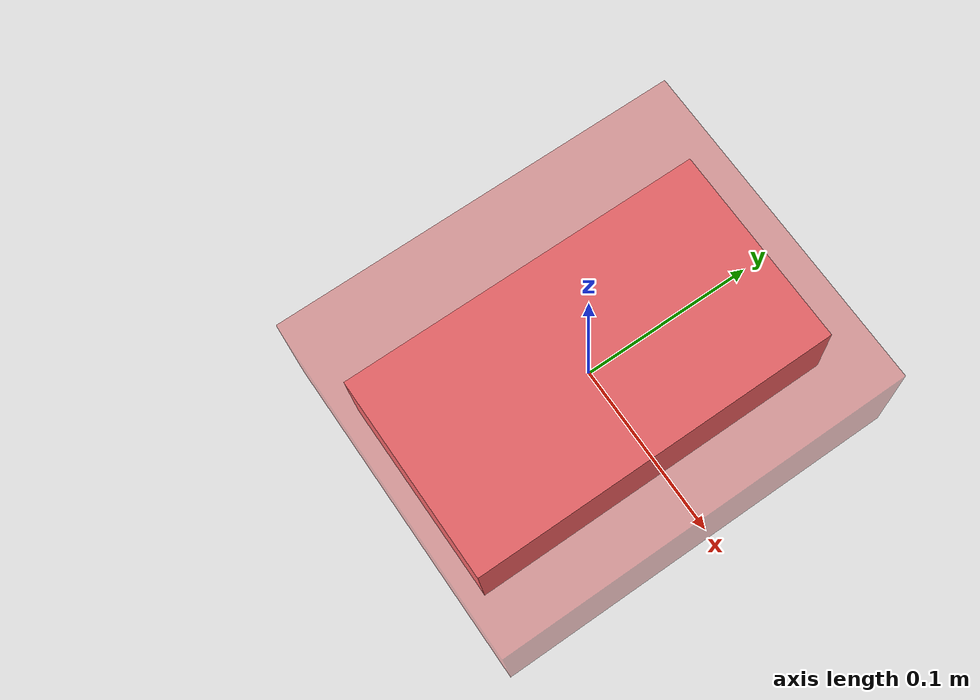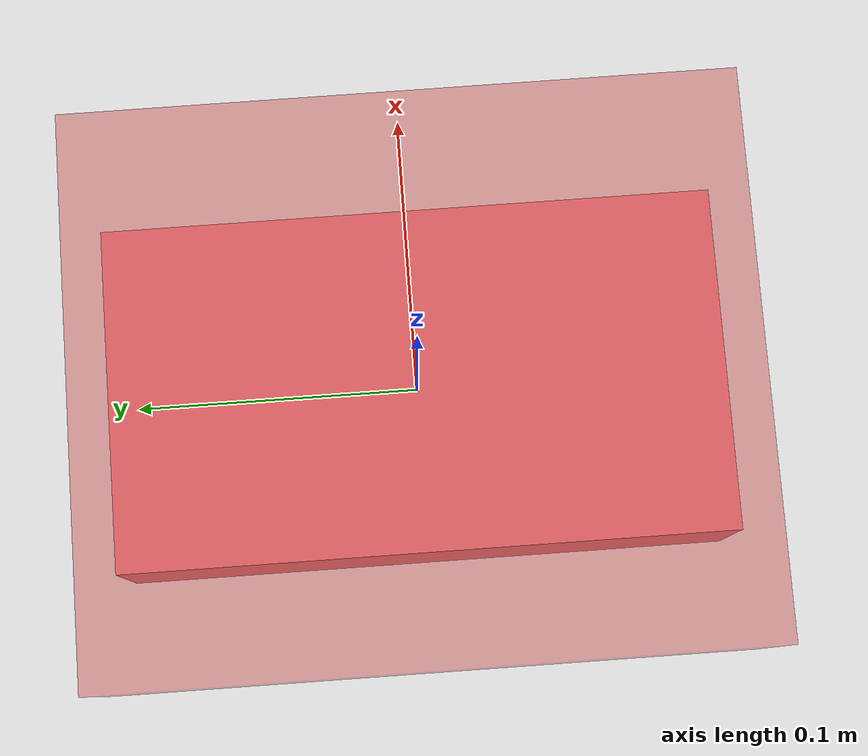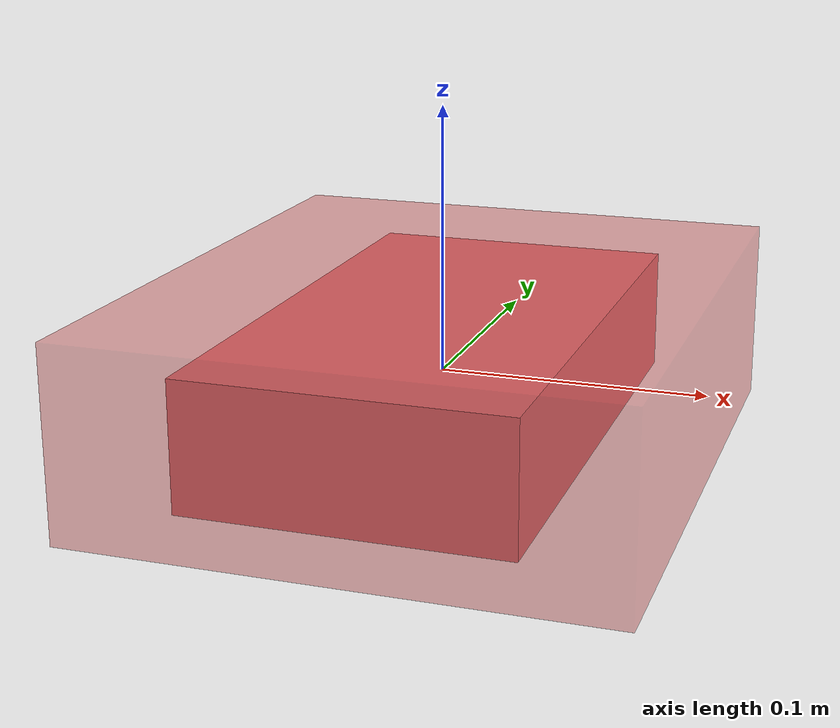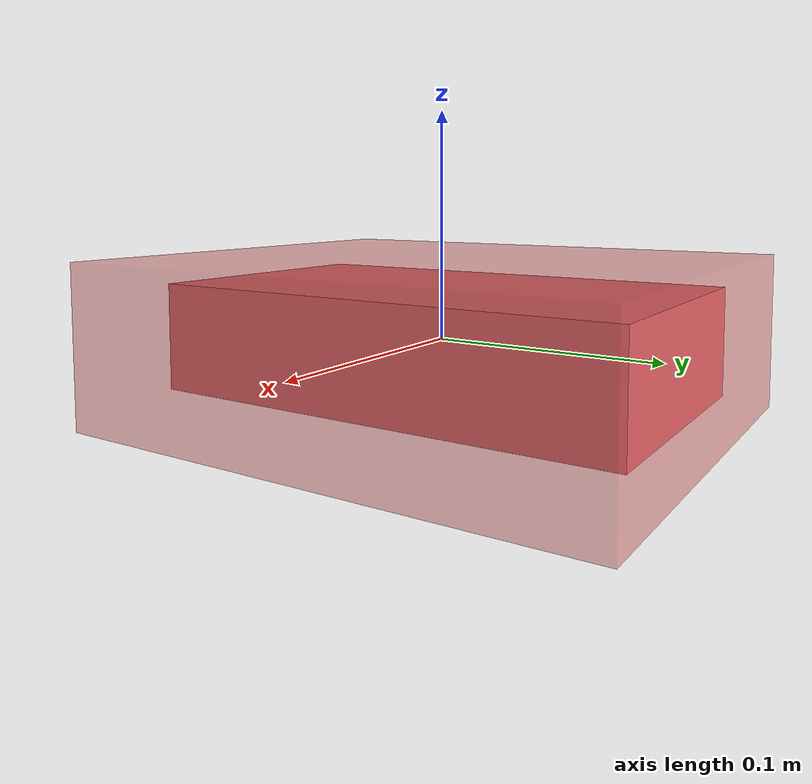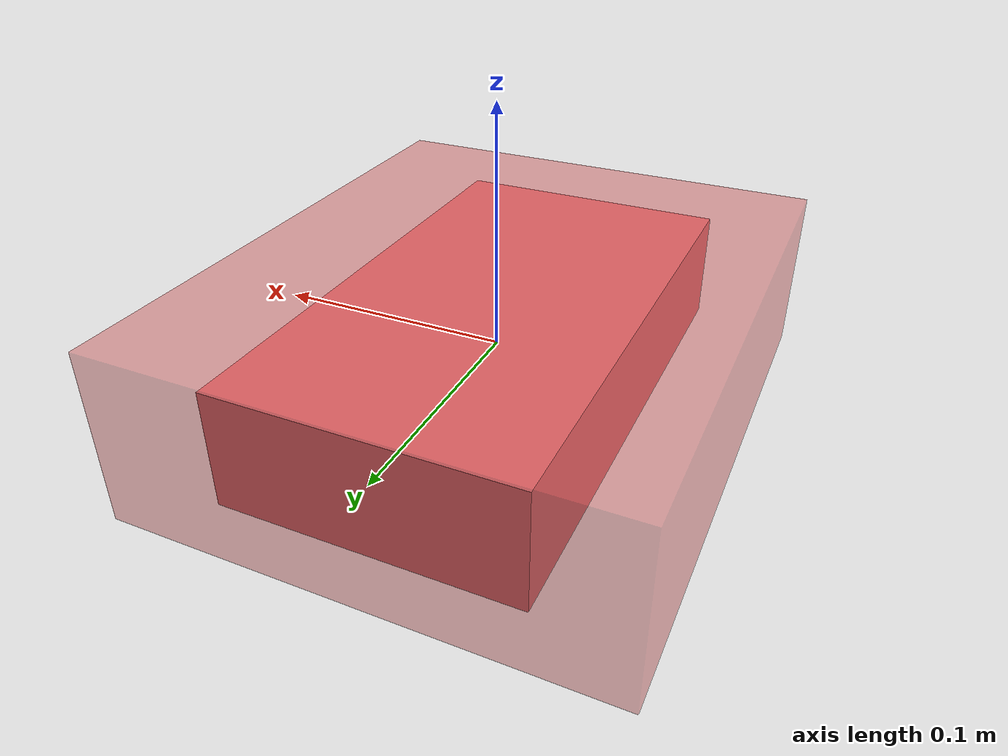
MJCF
<mujoco model="humanoid">
    <compiler angle="degree" inertiafromgeom="true" coordinate="global"/>
    <include file="./common/materials.xml"/>
        <visual>
        <headlight ambient=".4 .4 .4" diffuse=".8 .8 .8" specular="0.3 0.3 0.3"/>
        <map znear=".01"/>
        <quality shadowsize="2048"/>
    </visual>
    <default>
        <joint damping="0.0" armature="0.01" stiffness="0.0" limited="true"/>
        <geom conaffinity="7" condim="1" contype="7" margin="0.001" material="self" rgba=".98 .54 .56 1."/>
    </default>
    <statistic extent="3" center="0 0 1"/>
    <option timestep="0.00222222222"/>
    <asset>
        <texture type="skybox" file="./common/sky1.png" gridsize="3 4" gridlayout=".U..LFRB.D.." width="8192" height="8192"/>
        <texture builtin="flat" height="1278" mark="cross" markrgb="1 1 1" name="texgeom" random="0.01" rgb1=".8 .6 .4" rgb2=".8 .6 .4" type="cube" width="127"/>
    </asset>
<worldbody>

<light diffuse="5 5 5" pos="0 0 3" dir="0 0 -1"/>
<geom condim="3" friction="1. .1 .1" material="grid_new" name="floor" pos="0 0 -3" rgba=".8 .9 .8 1" size="100 100 .2" type="plane"/>

<body name="root" user="0.0000 -0.0000 0.0000" pos="0.0000 -0.0000 0.0000">
    <joint armature="0.0" limited="false" name="root" pos="0.0000 -0.0000 0.0000" stiffness="0" type="free"/>
    <geom pos="0.0000 0.0000 0." size="0.0600 0.1070 0.0240" type="box"/>

    <site name="load_force" type="box" pos="0.0 0.0 0.0" size="0.10 0.1190 0.0360" quat="0 0 0 0.0000" rgba="0.8 0.2 .2 .4" />
    <site name="load_touch" type="box" pos="0.0 0.0 0.0" size="0.10 0.1190 0.0360" quat="0 0 0 0.0000" rgba="0.8 0.2 .2 .4" />
</body>
</worldbody>
<sensor>
    <force name="lforce" site="load_force"/>
</sensor>
<sensor>
    <touch name="ltouch" site="load_touch"/>
</sensor>

</mujoco>

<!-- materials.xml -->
<!--
Common textures, colors and materials to be used throughout this suite. Some
materials such as xxx_highlight are activated on occurence of certain events,
for example receiving a positive reward.
-->
<mujoco>
  <asset>
    <texture name="grid" type="2d" builtin="checker" rgb1=".1 .2 .3" rgb2=".2 .3 .4" width="300" height="300" mark="edge" markrgb=".2 .3 .4"/>
    <material name="grid" texture="grid" texrepeat="1 1" texuniform="true" reflectance=".2"/>
    <texture builtin="checker" height="100" name="texplane" rgb1="0 0 0" rgb2=".8 .8 .8" type="2d" width="100"/>
    <texture name="grass" file="./common/grass.png" type="2d"/>

    <texture name="grid_new" type="2d" builtin="checker" rgb1=".1 .3 .2" rgb2=".2 .4 .3" width="1000" height="1000" mark="none" markrgb=".8 .6 .4"/>
    <material name="grid_new" texture="grid_new" texrepeat="0.2 0.2" texuniform="true" reflectance=".2"/>
    <material name="MatPlane" reflectance="0.5" shininess="1" specular="1" texrepeat="60 60" texture="texplane"/>
    <material name="GrassPlane" reflectance="0.0" shininess="1" specular="1" texrepeat="400 400" texture="grass"/>
    <material name="self" rgba=".7 .5 .3 1"/>
    <material name="self_default" rgba=".7 .5 .3 1"/>
    <material name="self_highlight" rgba="0 .5 .3 1"/>
    <material name="effector" rgba=".7 .4 .2 1"/>
    <material name="effector_default" rgba=".7 .4 .2 1"/>
    <material name="effector_highlight" rgba="0 .5 .3 1"/>
    <material name="decoration" rgba=".3 .5 .7 1"/>
    <material name="eye" rgba="0 .2 1 1"/>
    <material name="target" rgba=".6 .3 .3 1"/>
    <material name="target_default" rgba=".6 .3 .3 1"/>
    <material name="target_highlight" rgba=".6 .3 .3 .4"/>
    <material name="expert" rgba=".6 .3 .3 .4"/>
  </asset>
</mujoco>
